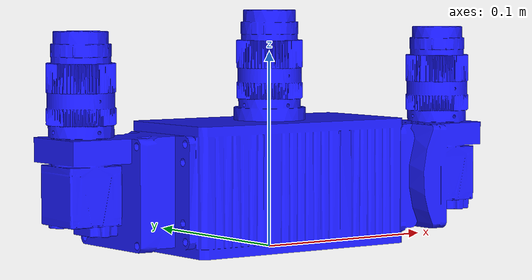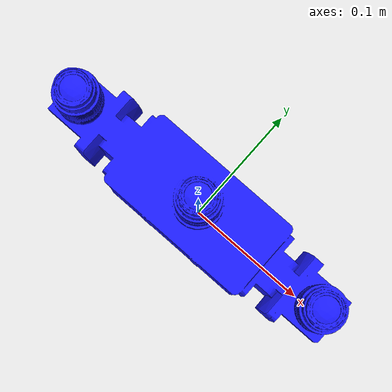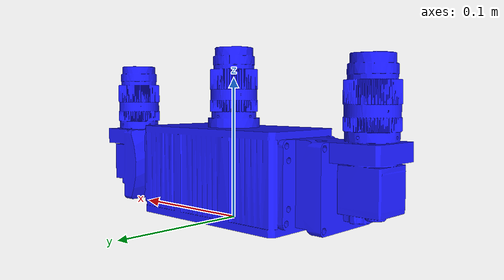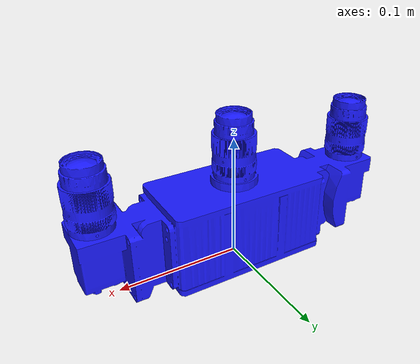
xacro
<?xml version="1.0"?>
<robot name="ensenso_camera" xmlns:xacro="http://www.ros.org/wiki/xacro">
  <xacro:include filename="ensenso_description/ensenso.xacro" />

  <!-- Parameters -->
  <!-- Name of the camera -->
  <xacro:arg name="camera" default="X200" />
  <xacro:property name="camera_name" value="$(arg camera)" />

  <!-- Enlarges the bounding box in all directions -->
  <xacro:arg name="margin" default="0.03" />
  <xacro:property name="margin" value="$(arg margin)" />

  <!-- tf frame that references to the cameras mounting frame -->
  <xacro:arg name="corresponding_frame_name" default="base_link" />
  <xacro:property name="corresponding_frame_name" value="$(arg corresponding_frame_name)" />

  <xacro:ensenso_X200_Series name="${camera_name}" margin="${margin}"/>
  <joint name="${corresponding_frame_name}_to_${camera_name}" type="fixed">
    <parent link="${corresponding_frame_name}" />
    <child link="${camera_name}" />
    <origin xyz="0 0 0" rpy="0 0 0" />
  </joint>

  <link name="${corresponding_frame_name}" />
</robot>
<!-- Example usage with:
roslaunch urdf_tutorial display.launch model:=`rospack find ensenso_description`/ensenso_X200_Series.xacro gui:=true
-->

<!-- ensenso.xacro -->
<robot name="ensenso_camera" xmlns:xacro="http://www.ros.org/wiki/xacro">

  <material name="Ensenso/Blue">
    <color rgba="0.1 0.1 1.0 1.0"/>
  </material>

  <material name="Ensenso/Black">
    <color rgba="0.0 0.0 0.0 1.0"/>
  </material>

  <xacro:macro name="ensenso_X200_Series" params="name margin:=0.03">
    <xacro:include filename="inertia_description/inertia_table.xacro"/>
    <link name="${name}">
      <visual>
        <origin rpy="0 0 0" xyz="0 0 0"/>
        <geometry>
          <mesh filename="file:///$(find cell_envir)/urdf/ensenso_description/stl_meshes/X3x-5CP-200.stl"/>
        </geometry>
        <material name="Ensenso/Blue"/>
      </visual>
      <collision>
        <origin rpy="0.0 0.0 0.0" xyz="0.0 0.0 ${0.033+0.05/2}"/>
        <geometry>
          <box size="${margin+0.12} ${margin+0.066} ${margin+0.08+0.05}"/>
        </geometry>
      </collision>
      <inertial>
          <xacro:box_inertia m="1" x="0.3" y="0.1" z="0.2"/>
      </inertial>

    </link>

    <!-- Left lens -->
    <joint name="${name}_left_lens_joint" type="fixed">
      <parent link="${name}"/>
      <child link="${name}_left_lens_frame"/>
      <origin xyz="-0.113 0.0 0.063" rpy="0 0 0"/>
    </joint>

    <link name="${name}_left_lens_frame"/>

  </xacro:macro>

</robot>

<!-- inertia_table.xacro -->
<robot name="inertias" xmlns:xacro="http://www.ros.org/wiki/xacro">

    <xacro:macro name="cylinder_inertia" params="m r h">
        <inertia  ixx="${m*(3*r*r+h*h)/12}" ixy = "0" ixz = "0"
                    iyy="${m*(3*r*r+h*h)/12}" iyz = "0"
                    izz="${m*r*r/2}" />
        <mass value="${m/1000}" />
    </xacro:macro>

    <xacro:macro name="box_inertia" params="m x y z">
            <inertia  ixx="${m*(y*y+z*z)/12}" ixy = "0" ixz = "0"
                    iyy="${m*(x*x+z*z)/12}" iyz = "0"
                    izz="${m*(x*x+y*y)/12}" />
            <mass value="${m/1000}" />
    </xacro:macro>

    <xacro:macro name="sphere_inertia" params="m r">
            <inertia  ixx="${2*m*r*r/5}" ixy = "0" ixz = "0"
                    iyy="${2*m*r*r/5}" iyz = "0"
                    izz="${2*m*r*r/5}" />
            <mass value="${m/10}" />
    </xacro:macro>
</robot>
